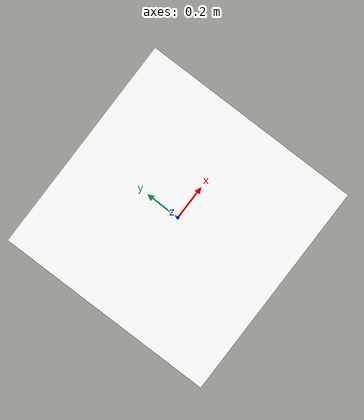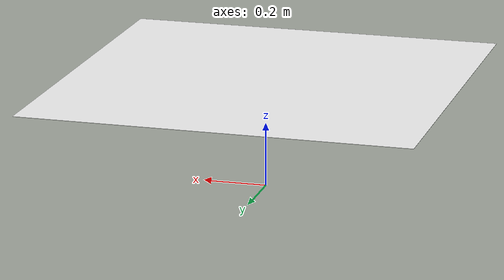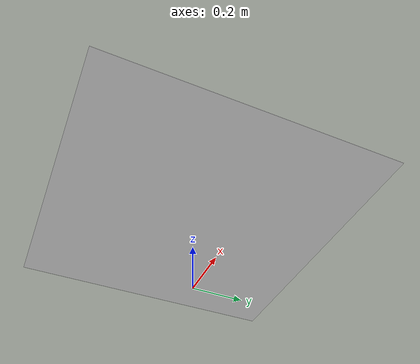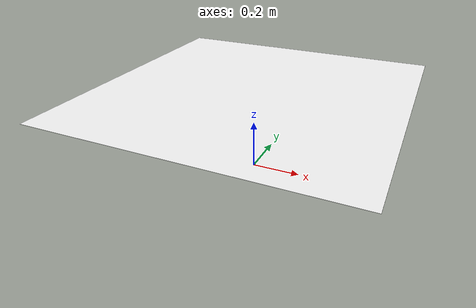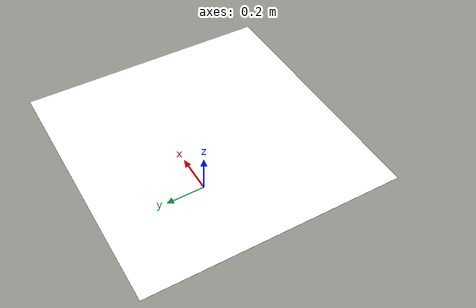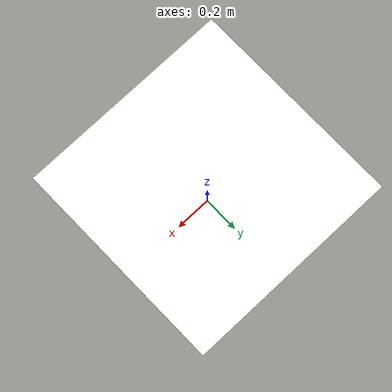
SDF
<?xml version="1.0"?>
<sdf version="1.9">
  <model name="box_on_pallet">
    <static>false</static>

    <!-- === LINK DO PALLET === -->
    <link name="link_pallet">
      <pose>0 0 0 0 0 0</pose>

      <include>
        <uri>model://Pallet_Standard</uri>
      </include>
    </link>
5
    <!-- === LINK DA CAIXA (COM ARUCO EM CIMA) === -->
    <link name="link_box">
      <!-- altura do pallet ≈ 0.144 m (do modelo oficial) -->
      <!-- altura da caixa = 0.2 → metade = 0.1 -->
      <!-- posição final da caixa: pallet + metade da caixa -->
      <pose>0 0 0.244 0 0 0</pose>

      <!-- superfície superior da caixa com ArUco -->
      <visual name="aruco_top">
        <pose>0 0 0.1 0 0 0</pose> <!-- metade da altura da caixa -->
        <geometry>
          <box>
            <size>1.2 1.2 0.001</size>
          </box>
        </geometry>

        <material>
          <ambient>1 1 1 1</ambient>
          <diffuse>1 1 1 1</diffuse>
          <specular>0.1 0.1 0.1 1</specular>

          <pbr>
            <metal>
              <albedo_map>aruco_1.png</albedo_map>
            </metal>
          </pbr>
        </material>
      </visual>
    </link>

    <!-- === JOINT FIXO ENTRE PALLET E CAIXA === -->
    <joint name="joint_box_pallet" type="fixed">
      <parent>link_pallet</parent>
      <child>link_box</child>
    </joint>

  </model>
</sdf>
